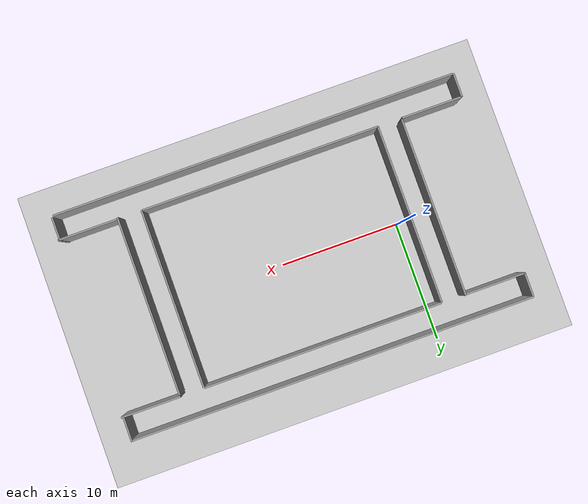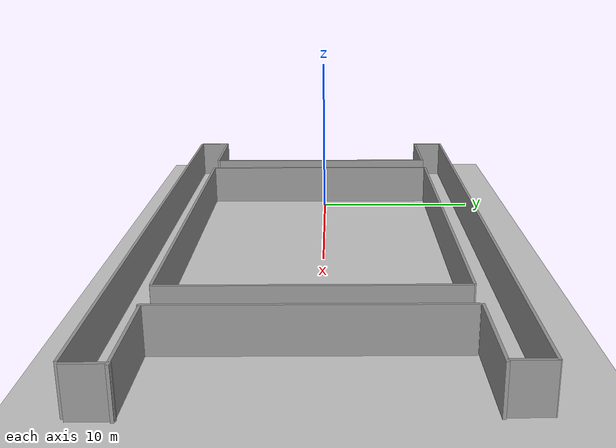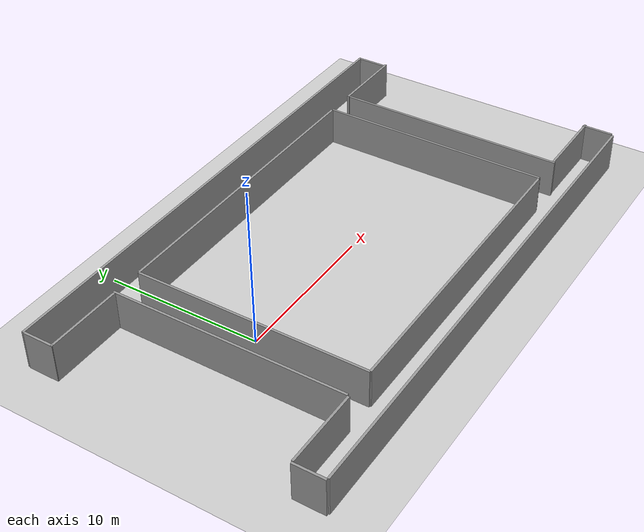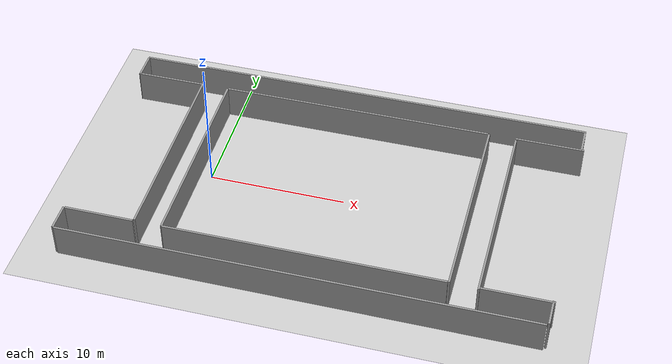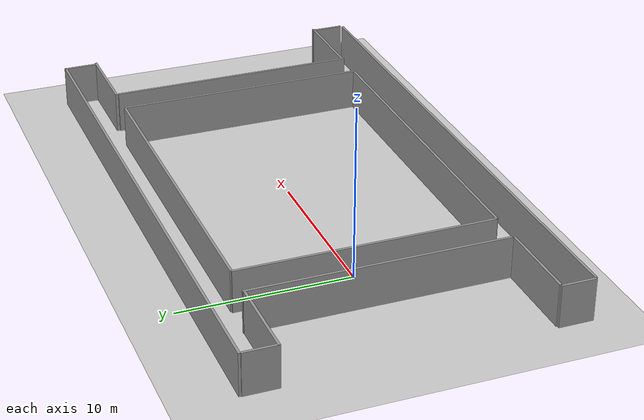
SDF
<sdf version="1.6">
 <world name="default">
  <light name="sun" type="directional">
   <pose>0 0 10 0 -0 0</pose>
   <diffuse>0.8 0.8 0.8 1</diffuse>
   <specular>0.1 0.1 0.1 1</specular>
   <attenuation>
    <range>1000</range>
    <constant>0.9</constant>
    <linear>0.01</linear>
    <quadratic>0.001</quadratic>
   </attenuation>
   <direction>-0.5 0.5 -1</direction>
  </light>
  <model name="ground_plane">
   <static>1</static>
   <link name="link">
    <collision name="collision">
     <geometry><plane><normal>0 0 1</normal><size>100 100</size></plane></geometry>
     <surface><friction><ode><mu>100</mu><mu2>50</mu2></ode></friction></surface>
    </collision>
    <visual name="visual">
     <cast_shadows>0</cast_shadows>
     <geometry><plane><normal>0 0 1</normal><size>100 100</size></plane></geometry>
     <material>
      <script><uri>file://media/materials/scripts/gazebo.material</uri><name>Gazebo/Grey</name></script>
     </material>
    </visual>
   </link>
  </model>
  <gravity>0 0 -9.8</gravity>
  <magnetic_field>6e-06 2.3e-05 -4.2e-05</magnetic_field>
  <atmosphere type="adiabatic"/>
  <physics name="default_physics" default="0" type="ode">
   <max_step_size>0.001</max_step_size>
   <real_time_factor>1</real_time_factor>
   <real_time_update_rate>1000</real_time_update_rate>
  </physics>
  <scene><ambient>0.4 0.4 0.4 1</ambient><background>0.7 0.7 0.7 1</background><shadows>1</shadows></scene>
  <spherical_coordinates>
   <surface_model>EARTH_WGS84</surface_model>
   <latitude_deg>0</latitude_deg>
   <longitude_deg>0</longitude_deg>
   <elevation>0</elevation>
   <heading_deg>0</heading_deg>
  </spherical_coordinates>
  <model name="myrunway">
   <link name="Wall_0">
    <pose>-11.6 0.099018 0 0 0 -1.5708</pose>
    <inertial>
     <mass>1</mass>
     <inertia><ixx>1</ixx><ixy>0</ixy><ixz>0</ixz><iyy>1</iyy><iyz>0</iyz><izz>1</izz></inertia>
    </inertial>
    <visual name="Wall_0_Visual">
     <pose>0 0 1.25 0 -0 0</pose>
     <geometry><box><size>15 0.15 2.5</size></box></geometry>
     <material>
      <script><uri>file://media/materials/scripts/gazebo.material</uri><name>Gazebo/Grey</name></script>
      <ambient>1 1 1 1</ambient>
      <shader type="pixel"><normal_map>__default__</normal_map></shader>
      <diffuse>0.7 0.7 0.7 1</diffuse>
      <specular>0.01 0.01 0.01 1</specular>
      <emissive>0 0 0 1</emissive>
     </material>
    </visual>
    <collision name="Wall_0_Collision">
     <pose>0 0 1.25 0 -0 0</pose>
     <geometry><box><size>15 0.15 2.5</size></box></geometry>
     <surface>
      <friction>
       <ode><mu>1</mu><mu2>1</mu2><fdir1>0 0 0</fdir1><slip1>0</slip1><slip2>0</slip2></ode>
       <torsional>
        <coefficient>1</coefficient>
        <patch_radius>0</patch_radius>
        <surface_radius>0</surface_radius>
        <use_patch_radius>1</use_patch_radius>
        <ode><slip>0</slip></ode>
       </torsional>
      </friction>
      <bounce><restitution_coefficient>0</restitution_coefficient><threshold>1e+06</threshold></bounce>
      <contact>
       <collide_without_contact>0</collide_without_contact>
       <collide_without_contact_bitmask>1</collide_without_contact_bitmask>
       <collide_bitmask>1</collide_bitmask>
       <ode>
        <soft_cfm>0</soft_cfm>
        <soft_erp>0.2</soft_erp>
        <kp>1e+13</kp>
        <kd>1</kd>
        <max_vel>0.01</max_vel>
        <min_depth>0</min_depth>
       </ode>
       <bullet>
        <split_impulse>1</split_impulse>
        <split_impulse_penetration_threshold>-0.01</split_impulse_penetration_threshold>
        <soft_cfm>0</soft_cfm>
        <soft_erp>0.2</soft_erp>
        <kp>1e+13</kp>
        <kd>1</kd>
       </bullet>
      </contact>
     </surface>
    </collision>
   </link>
   <link name="Wall_0_clone">
    <pose>-9.6 0 0 0 0 -1.5708</pose>
    <inertial>
     <mass>1</mass>
     <inertia><ixx>1</ixx><ixy>0</ixy><ixz>0</ixz><iyy>1</iyy><iyz>0</iyz><izz>1</izz></inertia>
    </inertial>
    <visual name="Wall_0_Visual">
     <pose>0 0 1.25 0 -0 0</pose>
     <geometry><box><size>15 0.15 2.5</size></box></geometry>
     <material>
      <script><uri>file://media/materials/scripts/gazebo.material</uri><name>Gazebo/Grey</name></script>
      <ambient>1 1 1 1</ambient>
      <shader type="pixel"><normal_map>__default__</normal_map></shader>
      <diffuse>0.7 0.7 0.7 1</diffuse>
      <specular>0.01 0.01 0.01 1</specular>
      <emissive>0 0 0 1</emissive>
     </material>
    </visual>
    <collision name="Wall_0_Collision">
     <pose>0 0 1.25 0 -0 0</pose>
     <geometry><box><size>15 0.15 2.5</size></box></geometry>
     <surface>
      <friction>
       <ode><mu>1</mu><mu2>1</mu2><fdir1>0 0 0</fdir1><slip1>0</slip1><slip2>0</slip2></ode>
       <torsional>
        <coefficient>1</coefficient>
        <patch_radius>0</patch_radius>
        <surface_radius>0</surface_radius>
        <use_patch_radius>1</use_patch_radius>
        <ode><slip>0</slip></ode>
       </torsional>
      </friction>
      <bounce><restitution_coefficient>0</restitution_coefficient><threshold>1e+06</threshold></bounce>
      <contact>
       <collide_without_contact>0</collide_without_contact>
       <collide_without_contact_bitmask>1</collide_without_contact_bitmask>
       <collide_bitmask>1</collide_bitmask>
       <ode>
        <soft_cfm>0</soft_cfm>
        <soft_erp>0.2</soft_erp>
        <kp>1e+13</kp>
        <kd>1</kd>
        <max_vel>0.01</max_vel>
        <min_depth>0</min_depth>
       </ode>
       <bullet>
        <split_impulse>1</split_impulse>
        <split_impulse_penetration_threshold>-0.01</split_impulse_penetration_threshold>
        <soft_cfm>0</soft_cfm>
        <soft_erp>0.2</soft_erp>
        <kp>1e+13</kp>
        <kd>1</kd>
       </bullet>
      </contact>
     </surface>
    </collision>
   </link>
   <link name="Wall_0_clone_0">
    <pose>-16.7771 -8.49163 0 0 0 -1.5708</pose>
    <inertial>
     <mass>1</mass>
     <inertia><ixx>1</ixx><ixy>0</ixy><ixz>0</ixz><iyy>1</iyy><iyz>0</iyz><izz>1</izz></inertia>
    </inertial>
    <visual name="Wall_0_Visual">
     <pose>0 0 1.25 0 -0 0</pose>
     <geometry><box><size>2 0.15 2.5</size></box></geometry>
     <material>
      <script><uri>file://media/materials/scripts/gazebo.material</uri><name>Gazebo/Grey</name></script>
      <ambient>1 1 1 1</ambient>
      <shader type="pixel"><normal_map>__default__</normal_map></shader>
      <diffuse>0.7 0.7 0.7 1</diffuse>
      <specular>0.01 0.01 0.01 1</specular>
      <emissive>0 0 0 1</emissive>
     </material>
    </visual>
    <collision name="Wall_0_Collision">
     <pose>0 0 1.25 0 -0 0</pose>
     <geometry><box><size>2 0.15 2.5</size></box></geometry>
     <surface>
      <friction>
       <ode><mu>1</mu><mu2>1</mu2><fdir1>0 0 0</fdir1><slip1>0</slip1><slip2>0</slip2></ode>
       <torsional>
        <coefficient>1</coefficient>
        <patch_radius>0</patch_radius>
        <surface_radius>0</surface_radius>
        <use_patch_radius>1</use_patch_radius>
        <ode><slip>0</slip></ode>
       </torsional>
      </friction>
      <bounce><restitution_coefficient>0</restitution_coefficient><threshold>1e+06</threshold></bounce>
      <contact>
       <collide_without_contact>0</collide_without_contact>
       <collide_without_contact_bitmask>1</collide_without_contact_bitmask>
       <collide_bitmask>1</collide_bitmask>
       <ode>
        <soft_cfm>0</soft_cfm>
        <soft_erp>0.2</soft_erp>
        <kp>1e+13</kp>
        <kd>1</kd>
        <max_vel>0.01</max_vel>
        <min_depth>0</min_depth>
       </ode>
       <bullet>
        <split_impulse>1</split_impulse>
        <split_impulse_penetration_threshold>-0.01</split_impulse_penetration_threshold>
        <soft_cfm>0</soft_cfm>
        <soft_erp>0.2</soft_erp>
        <kp>1e+13</kp>
        <kd>1</kd>
       </bullet>
      </contact>
     </surface>
    </collision>
   </link>
   <link name="Wall_0_clone_0_clone">
    <pose>17.4216 -8.38771 0 0 0 -1.5708</pose>
    <inertial>
     <mass>1</mass>
     <inertia><ixx>1</ixx><ixy>0</ixy><ixz>0</ixz><iyy>1</iyy><iyz>0</iyz><izz>1</izz></inertia>
    </inertial>
    <visual name="Wall_0_Visual">
     <pose>0 0 1.25 0 -0 0</pose>
     <geometry><box><size>2 0.15 2.5</size></box></geometry>
     <material>
      <script><uri>file://media/materials/scripts/gazebo.material</uri><name>Gazebo/Grey</name></script>
      <ambient>1 1 1 1</ambient>
      <shader type="pixel"><normal_map>__default__</normal_map></shader>
      <diffuse>0.7 0.7 0.7 1</diffuse>
      <specular>0.01 0.01 0.01 1</specular>
      <emissive>0 0 0 1</emissive>
     </material>
    </visual>
    <collision name="Wall_0_Collision">
     <pose>0 0 1.25 0 -0 0</pose>
     <geometry><box><size>2 0.15 2.5</size></box></geometry>
     <surface>
      <friction>
       <ode><mu>1</mu><mu2>1</mu2><fdir1>0 0 0</fdir1><slip1>0</slip1><slip2>0</slip2></ode>
       <torsional>
        <coefficient>1</coefficient>
        <patch_radius>0</patch_radius>
        <surface_radius>0</surface_radius>
        <use_patch_radius>1</use_patch_radius>
        <ode><slip>0</slip></ode>
       </torsional>
      </friction>
      <bounce><restitution_coefficient>0</restitution_coefficient><threshold>1e+06</threshold></bounce>
      <contact>
       <collide_without_contact>0</collide_without_contact>
       <collide_without_contact_bitmask>1</collide_without_contact_bitmask>
       <collide_bitmask>1</collide_bitmask>
       <ode>
        <soft_cfm>0</soft_cfm>
        <soft_erp>0.2</soft_erp>
        <kp>1e+13</kp>
        <kd>1</kd>
        <max_vel>0.01</max_vel>
        <min_depth>0</min_depth>
       </ode>
       <bullet>
        <split_impulse>1</split_impulse>
        <split_impulse_penetration_threshold>-0.01</split_impulse_penetration_threshold>
        <soft_cfm>0</soft_cfm>
        <soft_erp>0.2</soft_erp>
        <kp>1e+13</kp>
        <kd>1</kd>
       </bullet>
      </contact>
     </surface>
    </collision>
   </link>
   <link name="Wall_0_clone_0_clone_0">
    <pose>17.2728 8.52902 0 0 0 -1.5708</pose>
    <inertial>
     <mass>1</mass>
     <inertia><ixx>1</ixx><ixy>0</ixy><ixz>0</ixz><iyy>1</iyy><iyz>0</iyz><izz>1</izz></inertia>
    </inertial>
    <visual name="Wall_0_Visual">
     <pose>0 0 1.25 0 -0 0</pose>
     <geometry><box><size>2 0.15 2.5</size></box></geometry>
     <material>
      <script><uri>file://media/materials/scripts/gazebo.material</uri><name>Gazebo/Grey</name></script>
      <ambient>1 1 1 1</ambient>
      <shader type="pixel"><normal_map>__default__</normal_map></shader>
      <diffuse>0.7 0.7 0.7 1</diffuse>
      <specular>0.01 0.01 0.01 1</specular>
      <emissive>0 0 0 1</emissive>
     </material>
    </visual>
    <collision name="Wall_0_Collision">
     <pose>0 0 1.25 0 -0 0</pose>
     <geometry><box><size>2 0.15 2.5</size></box></geometry>
     <surface>
      <friction>
       <ode><mu>1</mu><mu2>1</mu2><fdir1>0 0 0</fdir1><slip1>0</slip1><slip2>0</slip2></ode>
       <torsional>
        <coefficient>1</coefficient>
        <patch_radius>0</patch_radius>
        <surface_radius>0</surface_radius>
        <use_patch_radius>1</use_patch_radius>
        <ode><slip>0</slip></ode>
       </torsional>
      </friction>
      <bounce><restitution_coefficient>0</restitution_coefficient><threshold>1e+06</threshold></bounce>
      <contact>
       <collide_without_contact>0</collide_without_contact>
       <collide_without_contact_bitmask>1</collide_without_contact_bitmask>
       <collide_bitmask>1</collide_bitmask>
       <ode>
        <soft_cfm>0</soft_cfm>
        <soft_erp>0.2</soft_erp>
        <kp>1e+13</kp>
        <kd>1</kd>
        <max_vel>0.01</max_vel>
        <min_depth>0</min_depth>
       </ode>
       <bullet>
        <split_impulse>1</split_impulse>
        <split_impulse_penetration_threshold>-0.01</split_impulse_penetration_threshold>
        <soft_cfm>0</soft_cfm>
        <soft_erp>0.2</soft_erp>
        <kp>1e+13</kp>
        <kd>1</kd>
       </bullet>
      </contact>
     </surface>
    </collision>
   </link>
   <link name="Wall_0_clone_1">
    <pose>-16.6328 8.4328 0 0 0 -1.5708</pose>
    <inertial>
     <mass>1</mass>
     <inertia><ixx>1</ixx><ixy>0</ixy><ixz>0</ixz><iyy>1</iyy><iyz>0</iyz><izz>1</izz></inertia>
    </inertial>
    <visual name="Wall_0_Visual">
     <pose>0 0 1.25 0 -0 0</pose>
     <geometry><box><size>2 0.15 2.5</size></box></geometry>
     <material>
      <script><uri>file://media/materials/scripts/gazebo.material</uri><name>Gazebo/Grey</name></script>
      <ambient>1 1 1 1</ambient>
      <shader type="pixel"><normal_map>__default__</normal_map></shader>
      <diffuse>0.7 0.7 0.7 1</diffuse>
      <specular>0.01 0.01 0.01 1</specular>
      <emissive>0 0 0 1</emissive>
     </material>
    </visual>
    <collision name="Wall_0_Collision">
     <pose>0 0 1.25 0 -0 0</pose>
     <geometry><box><size>2 0.15 2.5</size></box></geometry>
     <surface>
      <friction>
       <ode><mu>1</mu><mu2>1</mu2><fdir1>0 0 0</fdir1><slip1>0</slip1><slip2>0</slip2></ode>
       <torsional>
        <coefficient>1</coefficient>
        <patch_radius>0</patch_radius>
        <surface_radius>0</surface_radius>
        <use_patch_radius>1</use_patch_radius>
        <ode><slip>0</slip></ode>
       </torsional>
      </friction>
      <bounce><restitution_coefficient>0</restitution_coefficient><threshold>1e+06</threshold></bounce>
      <contact>
       <collide_without_contact>0</collide_without_contact>
       <collide_without_contact_bitmask>1</collide_without_contact_bitmask>
       <collide_bitmask>1</collide_bitmask>
       <ode>
        <soft_cfm>0</soft_cfm>
        <soft_erp>0.2</soft_erp>
        <kp>1e+13</kp>
        <kd>1</kd>
        <max_vel>0.01</max_vel>
        <min_depth>0</min_depth>
       </ode>
       <bullet>
        <split_impulse>1</split_impulse>
        <split_impulse_penetration_threshold>-0.01</split_impulse_penetration_threshold>
        <soft_cfm>0</soft_cfm>
        <soft_erp>0.2</soft_erp>
        <kp>1e+13</kp>
        <kd>1</kd>
       </bullet>
      </contact>
     </surface>
    </collision>
   </link>
   <link name="Wall_0_clone_clone">
    <pose>10.5 -0.029751 0 0 0 -1.5708</pose>
    <inertial>
     <mass>1</mass>
     <inertia><ixx>1</ixx><ixy>0</ixy><ixz>0</ixz><iyy>1</iyy><iyz>0</iyz><izz>1</izz></inertia>
    </inertial>
    <visual name="Wall_0_Visual">
     <pose>0 0 1.25 0 -0 0</pose>
     <geometry><box><size>15 0.15 2.5</size></box></geometry>
     <material>
      <script><uri>file://media/materials/scripts/gazebo.material</uri><name>Gazebo/Grey</name></script>
      <ambient>1 1 1 1</ambient>
      <shader type="pixel"><normal_map>__default__</normal_map></shader>
      <diffuse>0.7 0.7 0.7 1</diffuse>
      <specular>0.01 0.01 0.01 1</specular>
      <emissive>0 0 0 1</emissive>
     </material>
    </visual>
    <collision name="Wall_0_Collision">
     <pose>0 0 1.25 0 -0 0</pose>
     <geometry><box><size>15 0.15 2.5</size></box></geometry>
     <surface>
      <friction>
       <ode><mu>1</mu><mu2>1</mu2><fdir1>0 0 0</fdir1><slip1>0</slip1><slip2>0</slip2></ode>
       <torsional>
        <coefficient>1</coefficient>
        <patch_radius>0</patch_radius>
        <surface_radius>0</surface_radius>
        <use_patch_radius>1</use_patch_radius>
        <ode><slip>0</slip></ode>
       </torsional>
      </friction>
      <bounce><restitution_coefficient>0</restitution_coefficient><threshold>1e+06</threshold></bounce>
      <contact>
       <collide_without_contact>0</collide_without_contact>
       <collide_without_contact_bitmask>1</collide_without_contact_bitmask>
       <collide_bitmask>1</collide_bitmask>
       <ode>
        <soft_cfm>0</soft_cfm>
        <soft_erp>0.2</soft_erp>
        <kp>1e+13</kp>
        <kd>1</kd>
        <max_vel>0.01</max_vel>
        <min_depth>0</min_depth>
       </ode>
       <bullet>
        <split_impulse>1</split_impulse>
        <split_impulse_penetration_threshold>-0.01</split_impulse_penetration_threshold>
        <soft_cfm>0</soft_cfm>
        <soft_erp>0.2</soft_erp>
        <kp>1e+13</kp>
        <kd>1</kd>
       </bullet>
      </contact>
     </surface>
    </collision>
   </link>
   <link name="Wall_0_clone_clone_clone">
    <pose>12.5 -0.128959 0 0 0 -1.5708</pose>
    <inertial>
     <mass>1</mass>
     <inertia><ixx>1</ixx><ixy>0</ixy><ixz>0</ixz><iyy>1</iyy><iyz>0</iyz><izz>1</izz></inertia>
    </inertial>
    <visual name="Wall_0_Visual">
     <pose>0 0 1.25 0 -0 0</pose>
     <geometry><box><size>15 0.15 2.5</size></box></geometry>
     <material>
      <script><uri>file://media/materials/scripts/gazebo.material</uri><name>Gazebo/Grey</name></script>
      <ambient>1 1 1 1</ambient>
      <shader type="pixel"><normal_map>__default__</normal_map></shader>
      <diffuse>0.7 0.7 0.7 1</diffuse>
      <specular>0.01 0.01 0.01 1</specular>
      <emissive>0 0 0 1</emissive>
     </material>
    </visual>
    <collision name="Wall_0_Collision">
     <pose>0 0 1.25 0 -0 0</pose>
     <geometry><box><size>15 0.15 2.5</size></box></geometry>
     <surface>
      <friction>
       <ode><mu>1</mu><mu2>1</mu2><fdir1>0 0 0</fdir1><slip1>0</slip1><slip2>0</slip2></ode>
       <torsional>
        <coefficient>1</coefficient>
        <patch_radius>0</patch_radius>
        <surface_radius>0</surface_radius>
        <use_patch_radius>1</use_patch_radius>
        <ode><slip>0</slip></ode>
       </torsional>
      </friction>
      <bounce><restitution_coefficient>0</restitution_coefficient><threshold>1e+06</threshold></bounce>
      <contact>
       <collide_without_contact>0</collide_without_contact>
       <collide_without_contact_bitmask>1</collide_without_contact_bitmask>
       <collide_bitmask>1</collide_bitmask>
       <ode>
        <soft_cfm>0</soft_cfm>
        <soft_erp>0.2</soft_erp>
        <kp>1e+13</kp>
        <kd>1</kd>
        <max_vel>0.01</max_vel>
        <min_depth>0</min_depth>
       </ode>
       <bullet>
        <split_impulse>1</split_impulse>
        <split_impulse_penetration_threshold>-0.01</split_impulse_penetration_threshold>
        <soft_cfm>0</soft_cfm>
        <soft_erp>0.2</soft_erp>
        <kp>1e+13</kp>
        <kd>1</kd>
       </bullet>
      </contact>
     </surface>
    </collision>
   </link>
   <link name="Wall_17">
    <pose>0.300441 -9.5 0 0 -0 0</pose>
    <inertial>
     <mass>1</mass>
     <inertia><ixx>1</ixx><ixy>0</ixy><ixz>0</ixz><iyy>1</iyy><iyz>0</iyz><izz>1</izz></inertia>
    </inertial>
    <visual name="Wall_17_Visual">
     <pose>0 0 1.25 0 -0 0</pose>
     <geometry><box><size>34 0.15 2.5</size></box></geometry>
     <material>
      <script><uri>file://media/materials/scripts/gazebo.material</uri><name>Gazebo/Grey</name></script>
      <ambient>1 1 1 1</ambient>
      <shader type="pixel"><normal_map>__default__</normal_map></shader>
      <diffuse>0.7 0.7 0.7 1</diffuse>
      <specular>0.01 0.01 0.01 1</specular>
      <emissive>0 0 0 1</emissive>
     </material>
    </visual>
    <collision name="Wall_17_Collision">
     <pose>0 0 1.25 0 -0 0</pose>
     <geometry><box><size>34 0.15 2.5</size></box></geometry>
     <surface>
      <friction>
       <ode><mu>1</mu><mu2>1</mu2><fdir1>0 0 0</fdir1><slip1>0</slip1><slip2>0</slip2></ode>
       <torsional>
        <coefficient>1</coefficient>
        <patch_radius>0</patch_radius>
        <surface_radius>0</surface_radius>
        <use_patch_radius>1</use_patch_radius>
        <ode><slip>0</slip></ode>
       </torsional>
      </friction>
      <bounce><restitution_coefficient>0</restitution_coefficient><threshold>1e+06</threshold></bounce>
      <contact>
       <collide_without_contact>0</collide_without_contact>
       <collide_without_contact_bitmask>1</collide_without_contact_bitmask>
       <collide_bitmask>1</collide_bitmask>
       <ode>
        <soft_cfm>0</soft_cfm>
        <soft_erp>0.2</soft_erp>
        <kp>1e+13</kp>
        <kd>1</kd>
        <max_vel>0.01</max_vel>
        <min_depth>0</min_depth>
       </ode>
       <bullet>
        <split_impulse>1</split_impulse>
        <split_impulse_penetration_threshold>-0.01</split_impulse_penetration_threshold>
        <soft_cfm>0</soft_cfm>
        <soft_erp>0.2</soft_erp>
        <kp>1e+13</kp>
        <kd>1</kd>
       </bullet>
      </contact>
     </surface>
    </collision>
   </link>
   <link name="Wall_17_clone">
    <pose>0.334618 9.5 0 0 -0 0</pose>
    <inertial>
     <mass>1</mass>
     <inertia><ixx>1</ixx><ixy>0</ixy><ixz>0</ixz><iyy>1</iyy><iyz>0</iyz><izz>1</izz></inertia>
    </inertial>
    <visual name="Wall_17_Visual">
     <pose>0 0 1.25 0 -0 0</pose>
     <geometry><box><size>34 0.15 2.5</size></box></geometry>
     <material>
      <script><uri>file://media/materials/scripts/gazebo.material</uri><name>Gazebo/Grey</name></script>
      <ambient>1 1 1 1</ambient>
      <shader type="pixel"><normal_map>__default__</normal_map></shader>
      <diffuse>0.7 0.7 0.7 1</diffuse>
      <specular>0.01 0.01 0.01 1</specular>
      <emissive>0 0 0 1</emissive>
     </material>
    </visual>
    <collision name="Wall_17_Collision">
     <pose>0 0 1.25 0 -0 0</pose>
     <geometry><box><size>34 0.15 2.5</size></box></geometry>
     <surface>
      <friction>
       <ode><mu>1</mu><mu2>1</mu2><fdir1>0 0 0</fdir1><slip1>0</slip1><slip2>0</slip2></ode>
       <torsional>
        <coefficient>1</coefficient>
        <patch_radius>0</patch_radius>
        <surface_radius>0</surface_radius>
        <use_patch_radius>1</use_patch_radius>
        <ode><slip>0</slip></ode>
       </torsional>
      </friction>
      <bounce><restitution_coefficient>0</restitution_coefficient><threshold>1e+06</threshold></bounce>
      <contact>
       <collide_without_contact>0</collide_without_contact>
       <collide_without_contact_bitmask>1</collide_without_contact_bitmask>
       <collide_bitmask>1</collide_bitmask>
       <ode>
        <soft_cfm>0</soft_cfm>
        <soft_erp>0.2</soft_erp>
        <kp>1e+13</kp>
        <kd>1</kd>
        <max_vel>0.01</max_vel>
        <min_depth>0</min_depth>
       </ode>
       <bullet>
        <split_impulse>1</split_impulse>
        <split_impulse_penetration_threshold>-0.01</split_impulse_penetration_threshold>
        <soft_cfm>0</soft_cfm>
        <soft_erp>0.2</soft_erp>
        <kp>1e+13</kp>
        <kd>1</kd>
       </bullet>
      </contact>
     </surface>
    </collision>
   </link>
   <link name="Wall_17_clone_clone">
    <pose>0.433021 7.5 0 0 -0 0</pose>
    <inertial>
     <mass>1</mass>
     <inertia><ixx>1</ixx><ixy>0</ixy><ixz>0</ixz><iyy>1</iyy><iyz>0</iyz><izz>1</izz></inertia>
    </inertial>
    <visual name="Wall_17_Visual">
     <pose>0 0 1.25 0 -0 0</pose>
     <geometry><box><size>20 0.15 2.5</size></box></geometry>
     <material>
      <script><uri>file://media/materials/scripts/gazebo.material</uri><name>Gazebo/Grey</name></script>
      <ambient>1 1 1 1</ambient>
      <shader type="pixel"><normal_map>__default__</normal_map></shader>
      <diffuse>0.7 0.7 0.7 1</diffuse>
      <specular>0.01 0.01 0.01 1</specular>
      <emissive>0 0 0 1</emissive>
     </material>
    </visual>
    <collision name="Wall_17_Collision">
     <pose>0 0 1.25 0 -0 0</pose>
     <geometry><box><size>20 0.15 2.5</size></box></geometry>
     <surface>
      <friction>
       <ode><mu>1</mu><mu2>1</mu2><fdir1>0 0 0</fdir1><slip1>0</slip1><slip2>0</slip2></ode>
       <torsional>
        <coefficient>1</coefficient>
        <patch_radius>0</patch_radius>
        <surface_radius>0</surface_radius>
        <use_patch_radius>1</use_patch_radius>
        <ode><slip>0</slip></ode>
       </torsional>
      </friction>
      <bounce><restitution_coefficient>0</restitution_coefficient><threshold>1e+06</threshold></bounce>
      <contact>
       <collide_without_contact>0</collide_without_contact>
       <collide_without_contact_bitmask>1</collide_without_contact_bitmask>
       <collide_bitmask>1</collide_bitmask>
       <ode>
        <soft_cfm>0</soft_cfm>
        <soft_erp>0.2</soft_erp>
        <kp>1e+13</kp>
        <kd>1</kd>
        <max_vel>0.01</max_vel>
        <min_depth>0</min_depth>
       </ode>
       <bullet>
        <split_impulse>1</split_impulse>
        <split_impulse_penetration_threshold>-0.01</split_impulse_penetration_threshold>
        <soft_cfm>0</soft_cfm>
        <soft_erp>0.2</soft_erp>
        <kp>1e+13</kp>
        <kd>1</kd>
       </bullet>
      </contact>
     </surface>
    </collision>
   </link>
   <link name="Wall_17_clone_clone_clone">
    <pose>0.415973 -7.5 0 0 -0 0</pose>
    <inertial>
     <mass>1</mass>
     <inertia><ixx>1</ixx><ixy>0</ixy><ixz>0</ixz><iyy>1</iyy><iyz>0</iyz><izz>1</izz></inertia>
    </inertial>
    <visual name="Wall_17_Visual">
     <pose>0 0 1.25 0 -0 0</pose>
     <geometry><box><size>20 0.15 2.5</size></box></geometry>
     <material>
      <script><uri>file://media/materials/scripts/gazebo.material</uri><name>Gazebo/Grey</name></script>
      <ambient>1 1 1 1</ambient>
      <shader type="pixel"><normal_map>__default__</normal_map></shader>
      <diffuse>0.7 0.7 0.7 1</diffuse>
      <specular>0.01 0.01 0.01 1</specular>
      <emissive>0 0 0 1</emissive>
     </material>
    </visual>
    <collision name="Wall_17_Collision">
     <pose>0 0 1.25 0 -0 0</pose>
     <geometry><box><size>20 0.15 2.5</size></box></geometry>
     <surface>
      <friction>
       <ode><mu>1</mu><mu2>1</mu2><fdir1>0 0 0</fdir1><slip1>0</slip1><slip2>0</slip2></ode>
       <torsional>
        <coefficient>1</coefficient>
        <patch_radius>0</patch_radius>
        <surface_radius>0</surface_radius>
        <use_patch_radius>1</use_patch_radius>
        <ode><slip>0</slip></ode>
       </torsional>
      </friction>
      <bounce><restitution_coefficient>0</restitution_coefficient><threshold>1e+06</threshold></bounce>
      <contact>
       <collide_without_contact>0</collide_without_contact>
       <collide_without_contact_bitmask>1</collide_without_contact_bitmask>
       <collide_bitmask>1</collide_bitmask>
       <ode>
        <soft_cfm>0</soft_cfm>
        <soft_erp>0.2</soft_erp>
        <kp>1e+13</kp>
        <kd>1</kd>
        <max_vel>0.01</max_vel>
        <min_depth>0</min_depth>
       </ode>
       <bullet>
        <split_impulse>1</split_impulse>
        <split_impulse_penetration_threshold>-0.01</split_impulse_penetration_threshold>
        <soft_cfm>0</soft_cfm>
        <soft_erp>0.2</soft_erp>
        <kp>1e+13</kp>
        <kd>1</kd>
       </bullet>
      </contact>
     </surface>
    </collision>
   </link>
   <link name="Wall_20_clone">
    <pose>-14.1658 7.5 0 0 -0 0</pose>
    <inertial>
     <mass>1</mass>
     <pose>0 7.5 0 0 -0 0</pose>
     <inertia><ixx>1</ixx><ixy>0</ixy><ixz>0</ixz><iyy>1</iyy><iyz>0</iyz><izz>1</izz></inertia>
    </inertial>
    <visual name="Wall_20_Visual">
     <pose>0 0 1.25 0 -0 0</pose>
     <geometry><box><size>5 0.15 2.5</size></box></geometry>
     <material>
      <script><uri>file://media/materials/scripts/gazebo.material</uri><name>Gazebo/Grey</name></script>
      <ambient>1 1 1 1</ambient>
      <shader type="pixel"><normal_map>__default__</normal_map></shader>
      <diffuse>0.7 0.7 0.7 1</diffuse>
      <specular>0.01 0.01 0.01 1</specular>
      <emissive>0 0 0 1</emissive>
     </material>
    </visual>
    <collision name="Wall_20_Collision">
     <pose>0 0 1.25 0 -0 0</pose>
     <geometry><box><size>5 0.15 2.5</size></box></geometry>
     <surface>
      <friction>
       <ode><mu>1</mu><mu2>1</mu2><fdir1>0 0 0</fdir1><slip1>0</slip1><slip2>0</slip2></ode>
       <torsional>
        <coefficient>1</coefficient>
        <patch_radius>0</patch_radius>
        <surface_radius>0</surface_radius>
        <use_patch_radius>1</use_patch_radius>
        <ode><slip>0</slip></ode>
       </torsional>
      </friction>
      <bounce><restitution_coefficient>0</restitution_coefficient><threshold>1e+06</threshold></bounce>
      <contact>
       <collide_without_contact>0</collide_without_contact>
       <collide_without_contact_bitmask>1</collide_without_contact_bitmask>
       <collide_bitmask>1</collide_bitmask>
       <ode>
        <soft_cfm>0</soft_cfm>
        <soft_erp>0.2</soft_erp>
        <kp>1e+13</kp>
        <kd>1</kd>
        <max_vel>0.01</max_vel>
        <min_depth>0</min_depth>
       </ode>
       <bullet>
        <split_impulse>1</split_impulse>
        <split_impulse_penetration_threshold>-0.01</split_impulse_penetration_threshold>
        <soft_cfm>0</soft_cfm>
        <soft_erp>0.2</soft_erp>
        <kp>1e+13</kp>
        <kd>1</kd>
       </bullet>
      </contact>
     </surface>
    </collision>
   </link>
   <link name="Wall_20_clone_clone_0">
    <pose>-14.1743 -7.5 0 0 -0 0</pose>
    <inertial>
     <mass>1</mass>
     <pose>0 7.5 0 0 -0 0</pose>
     <inertia><ixx>1</ixx><ixy>0</ixy><ixz>0</ixz><iyy>1</iyy><iyz>0</iyz><izz>1</izz></inertia>
    </inertial>
    <visual name="Wall_20_Visual">
     <pose>0 0 1.25 0 -0 0</pose>
     <geometry><box><size>5 0.15 2.5</size></box></geometry>
     <material>
      <script><uri>file://media/materials/scripts/gazebo.material</uri><name>Gazebo/Grey</name></script>
      <ambient>1 1 1 1</ambient>
      <shader type="pixel"><normal_map>__default__</normal_map></shader>
      <diffuse>0.7 0.7 0.7 1</diffuse>
      <specular>0.01 0.01 0.01 1</specular>
      <emissive>0 0 0 1</emissive>
     </material>
    </visual>
    <collision name="Wall_20_Collision">
     <pose>0 0 1.25 0 -0 0</pose>
     <geometry><box><size>5 0.15 2.5</size></box></geometry>
     <surface>
      <friction>
       <ode><mu>1</mu><mu2>1</mu2><fdir1>0 0 0</fdir1><slip1>0</slip1><slip2>0</slip2></ode>
       <torsional>
        <coefficient>1</coefficient>
        <patch_radius>0</patch_radius>
        <surface_radius>0</surface_radius>
        <use_patch_radius>1</use_patch_radius>
        <ode><slip>0</slip></ode>
       </torsional>
      </friction>
      <bounce><restitution_coefficient>0</restitution_coefficient><threshold>1e+06</threshold></bounce>
      <contact>
       <collide_without_contact>0</collide_without_contact>
       <collide_without_contact_bitmask>1</collide_without_contact_bitmask>
       <collide_bitmask>1</collide_bitmask>
       <ode>
        <soft_cfm>0</soft_cfm>
        <soft_erp>0.2</soft_erp>
        <kp>1e+13</kp>
        <kd>1</kd>
        <max_vel>0.01</max_vel>
        <min_depth>0</min_depth>
       </ode>
       <bullet>
        <split_impulse>1</split_impulse>
        <split_impulse_penetration_threshold>-0.01</split_impulse_penetration_threshold>
        <soft_cfm>0</soft_cfm>
        <soft_erp>0.2</soft_erp>
        <kp>1e+13</kp>
        <kd>1</kd>
       </bullet>
      </contact>
     </surface>
    </collision>
   </link>
   <link name="Wall_20_clone_clone_0_clone">
    <pose>15.0798 -7.5 0 0 -0 0</pose>
    <inertial>
     <mass>1</mass>
     <pose>0 7.5 0 0 -0 0</pose>
     <inertia><ixx>1</ixx><ixy>0</ixy><ixz>0</ixz><iyy>1</iyy><iyz>0</iyz><izz>1</izz></inertia>
    </inertial>
    <visual name="Wall_20_Visual">
     <pose>0 0 1.25 0 -0 0</pose>
     <geometry><box><size>5 0.15 2.5</size></box></geometry>
     <material>
      <script><uri>file://media/materials/scripts/gazebo.material</uri><name>Gazebo/Grey</name></script>
      <ambient>1 1 1 1</ambient>
      <shader type="pixel"><normal_map>__default__</normal_map></shader>
      <diffuse>0.7 0.7 0.7 1</diffuse>
      <specular>0.01 0.01 0.01 1</specular>
      <emissive>0 0 0 1</emissive>
     </material>
    </visual>
    <collision name="Wall_20_Collision">
     <pose>0 0 1.25 0 -0 0</pose>
     <geometry><box><size>5 0.15 2.5</size></box></geometry>
     <surface>
      <friction>
       <ode><mu>1</mu><mu2>1</mu2><fdir1>0 0 0</fdir1><slip1>0</slip1><slip2>0</slip2></ode>
       <torsional>
        <coefficient>1</coefficient>
        <patch_radius>0</patch_radius>
        <surface_radius>0</surface_radius>
        <use_patch_radius>1</use_patch_radius>
        <ode><slip>0</slip></ode>
       </torsional>
      </friction>
      <bounce><restitution_coefficient>0</restitution_coefficient><threshold>1e+06</threshold></bounce>
      <contact>
       <collide_without_contact>0</collide_without_contact>
       <collide_without_contact_bitmask>1</collide_without_contact_bitmask>
       <collide_bitmask>1</collide_bitmask>
       <ode>
        <soft_cfm>0</soft_cfm>
        <soft_erp>0.2</soft_erp>
        <kp>1e+13</kp>
        <kd>1</kd>
        <max_vel>0.01</max_vel>
        <min_depth>0</min_depth>
       </ode>
       <bullet>
        <split_impulse>1</split_impulse>
        <split_impulse_penetration_threshold>-0.01</split_impulse_penetration_threshold>
        <soft_cfm>0</soft_cfm>
        <soft_erp>0.2</soft_erp>
        <kp>1e+13</kp>
        <kd>1</kd>
       </bullet>
      </contact>
     </surface>
    </collision>
   </link>
   <link name="Wall_20_clone_clone_0_clone_0">
    <pose>14.9621 7.5 0 0 -0 0</pose>
    <inertial>
     <mass>1</mass>
     <pose>0 7.5 0 0 -0 0</pose>
     <inertia><ixx>1</ixx><ixy>0</ixy><ixz>0</ixz><iyy>1</iyy><iyz>0</iyz><izz>1</izz></inertia>
    </inertial>
    <visual name="Wall_20_Visual">
     <pose>0 0 1.25 0 -0 0</pose>
     <geometry><box><size>5 0.15 2.5</size></box></geometry>
     <material>
      <script><uri>file://media/materials/scripts/gazebo.material</uri><name>Gazebo/Grey</name></script>
      <ambient>1 1 1 1</ambient>
      <shader type="pixel"><normal_map>__default__</normal_map></shader>
      <diffuse>0.7 0.7 0.7 1</diffuse>
      <specular>0.01 0.01 0.01 1</specular>
      <emissive>0 0 0 1</emissive>
     </material>
    </visual>
    <collision name="Wall_20_Collision">
     <pose>0 0 1.25 0 -0 0</pose>
     <geometry><box><size>5 0.15 2.5</size></box></geometry>
     <surface>
      <friction>
       <ode><mu>1</mu><mu2>1</mu2><fdir1>0 0 0</fdir1><slip1>0</slip1><slip2>0</slip2></ode>
       <torsional>
        <coefficient>1</coefficient>
        <patch_radius>0</patch_radius>
        <surface_radius>0</surface_radius>
        <use_patch_radius>1</use_patch_radius>
        <ode><slip>0</slip></ode>
       </torsional>
      </friction>
      <bounce><restitution_coefficient>0</restitution_coefficient><threshold>1e+06</threshold></bounce>
      <contact>
       <collide_without_contact>0</collide_without_contact>
       <collide_without_contact_bitmask>1</collide_without_contact_bitmask>
       <collide_bitmask>1</collide_bitmask>
       <ode>
        <soft_cfm>0</soft_cfm>
        <soft_erp>0.2</soft_erp>
        <kp>1e+13</kp>
        <kd>1</kd>
        <max_vel>0.01</max_vel>
        <min_depth>0</min_depth>
       </ode>
       <bullet>
        <split_impulse>1</split_impulse>
        <split_impulse_penetration_threshold>-0.01</split_impulse_penetration_threshold>
        <soft_cfm>0</soft_cfm>
        <soft_erp>0.2</soft_erp>
        <kp>1e+13</kp>
        <kd>1</kd>
       </bullet>
      </contact>
     </surface>
    </collision>
   </link>
   <static>1</static>
   <pose>8.67044 -0.351332 0 0 -0 0</pose>
  </model>
 </world>
</sdf>
